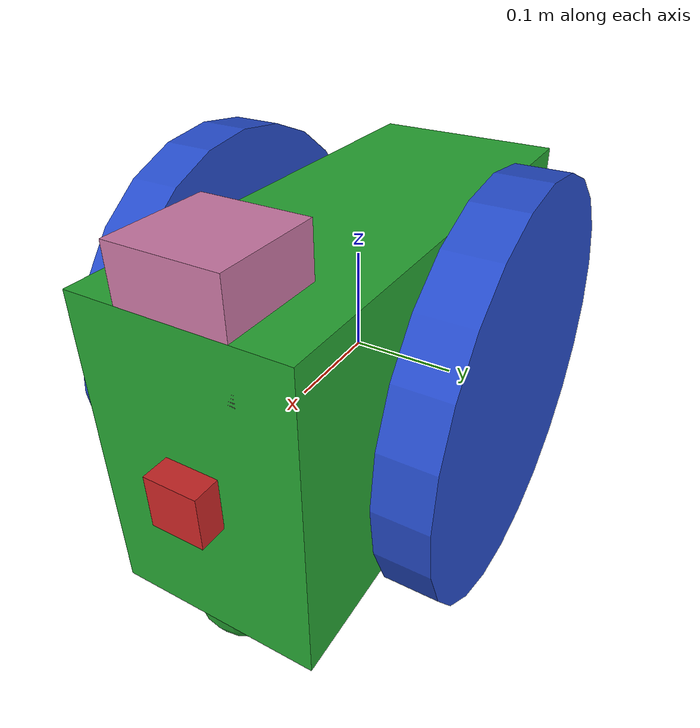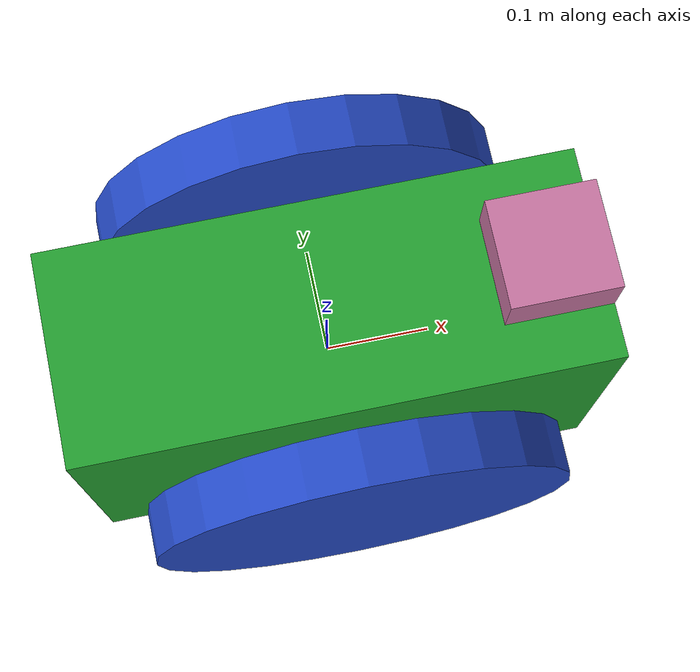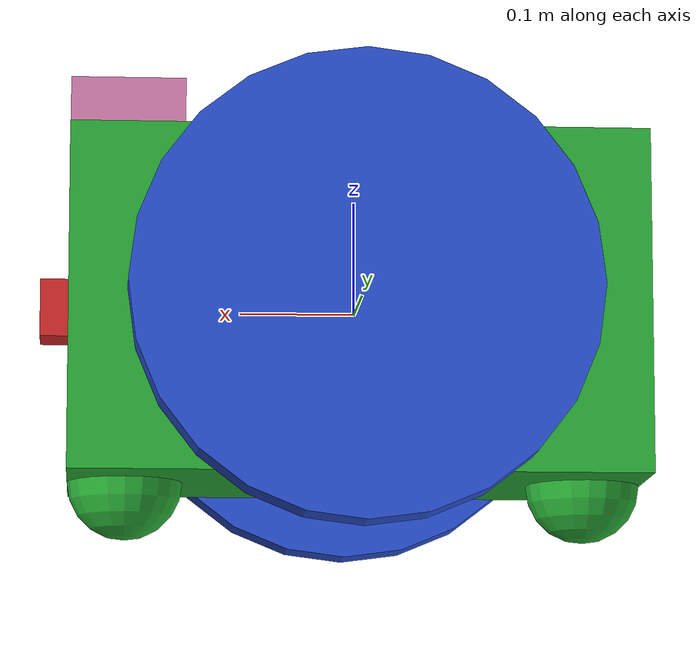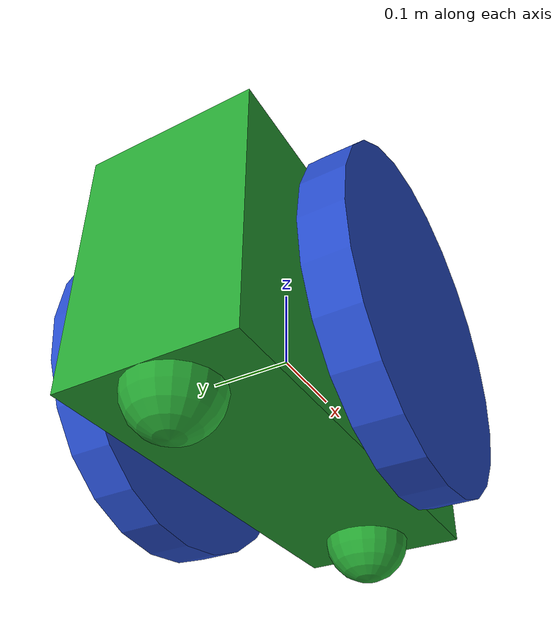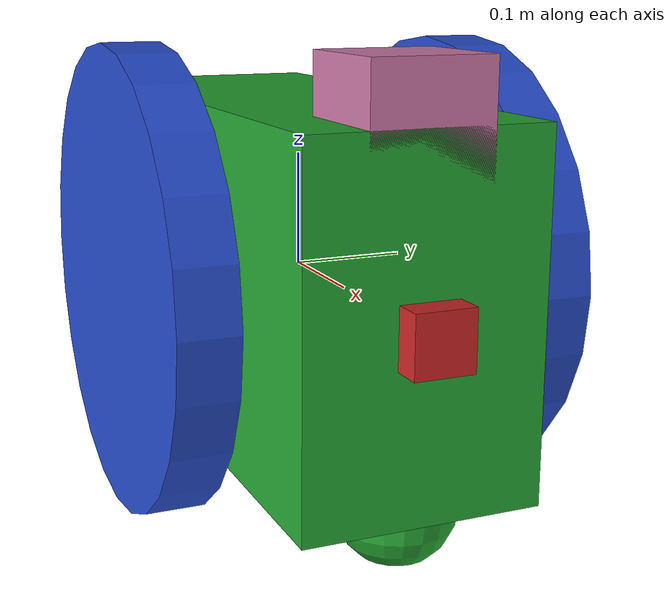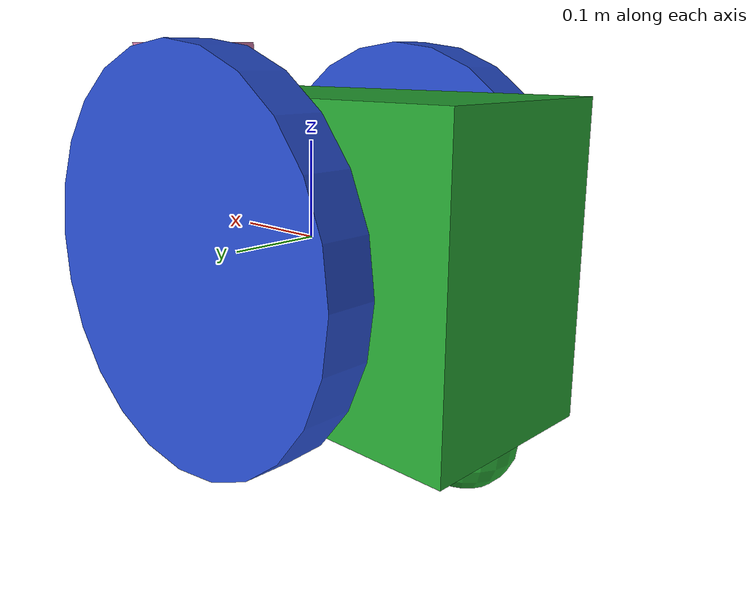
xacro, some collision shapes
<?xml version='1.0'?>

<robot name="my_robot" xmlns:xacro="http://www.ros.org/wiki/xacro">

  <xacro:include filename="$(find my_robot)/urdf/my_robot.gazebo" />

  <link name="robot_footprint"></link>

  <joint name="robot_footprint_joint" type="fixed">
    <origin xyz="0 0 0" rpy="0 0 0" />
    <parent link="robot_footprint"/>
    <child link="chassis" />
  </joint>

  <link name='chassis'>
    <pose>0 0 0.1 0 0 0</pose>

    <inertial>
      <mass value="15.0"/>
      <origin xyz="0.0 0 0" rpy=" 0 0 0"/>
      <inertia
          ixx="0.1" ixy="0" ixz="0"
          iyy="0.1" iyz="0"
          izz="0.1"
      />
    </inertial>

    <collision name='collision'>
      <origin xyz="0 0 0" rpy=" 0 0 0"/>
      <geometry>
        <box size=".5 .2 .3"/>
      </geometry>
    </collision>

    <visual name='chassis_visual'>
      <origin xyz="0 0 0" rpy=" 0 0 0"/>
      <geometry>
        <box size=".5 .2 .3"/>
      </geometry>
    </visual>

    <collision name='back_caster_collision'>
      <origin xyz="-0.2 0 -0.15" rpy=" 0 0 0"/>
      <geometry>
        <sphere radius="0.0499"/>
      </geometry>
    </collision>

    <visual name='back_caster_visual'>
      <origin xyz="-0.2 0 -0.15" rpy=" 0 0 0"/>
      <geometry>
        <sphere radius="0.05"/>
      </geometry>
    </visual>

    <collision name='front_caster_collision'>
      <origin xyz="0.2 0 -0.15" rpy=" 0 0 0"/>
      <geometry>
        <sphere radius="0.0499"/>
      </geometry>
    </collision>

    <visual name='front_caster_visual'>
      <origin xyz="0.2 0 -0.15" rpy=" 0 0 0"/>
      <geometry>
        <sphere radius="0.05"/>
      </geometry>
    </visual>

  </link>

  <link name='left_wheel'>
    <inertial>
      <mass value="5.0"/>
      <origin xyz="0 0 0" rpy="0 1.5707 1.5707"/>
      <inertia
          ixx="0.1" ixy="0" ixz="0"
          iyy="0.1" iyz="0"
          izz="0.1"
      />
    </inertial>

    <collision>
      <origin xyz="0 0 0" rpy="0 1.5707 1.5707"/>
      <geometry>
        <cylinder length="0.05" radius="0.2" />
      </geometry>
    </collision>

    <visual>
      <origin xyz="0 0 0" rpy="0 1.5707 1.5707"/>
      <geometry>
        <cylinder length="0.05" radius="0.2" />
      </geometry>
    </visual>
  </link>

  <link name='right_wheel'>
    <inertial>
      <mass value="5.0"/>
      <origin xyz="0 0 0" rpy="0 1.5707 1.5707"/>
      <inertia
          ixx="0.1" ixy="0" ixz="0"
          iyy="0.1" iyz="0"
          izz="0.1"
      />
    </inertial>

    <collision>
      <origin xyz="0 0 0" rpy="0 1.5707 1.5707"/>
      <geometry>
        <cylinder length="0.05" radius="0.2" />
      </geometry>
    </collision>

    <visual>
      <origin xyz="0 0 0" rpy="0 1.5707 1.5707"/>
      <geometry>
        <cylinder length="0.05" radius="0.2" />
      </geometry>
    </visual>
  </link>

  <joint type="continuous" name="left_wheel_hinge">
    <origin xyz="0 0.15 0" rpy="0 0 0"/>
    <child link="left_wheel"/>
    <parent link="chassis"/>
    <axis xyz="0 1 0" rpy="0 0 0"/>
    <limit effort="10000" velocity="1000"/>
    <dynamics damping="1.0" friction="1.0"/>
  </joint>

  <joint type="continuous" name="right_wheel_hinge">
    <origin xyz="0 -0.15 0" rpy="0 0 0"/>
    <child link="right_wheel"/>
    <parent link="chassis"/>
    <axis xyz="0 1 0" rpy="0 0 0"/>
    <limit effort="10000" velocity="1000"/>
    <dynamics damping="1.0" friction="1.0"/>
  </joint>

  <link name='camera'>
    <inertial>
      <mass value=".1"/>
      <origin xyz=".05 .05 .05" rpy="0 0 0"/>
      <inertia
          ixx="1e-6" ixy="0" ixz="0"
          iyy="1e-6" iyz="0"
          izz="1e-6"
      />
    </inertial>

    <collision>
      <origin xyz="0 0 0" rpy="0 0 0"/>
      <geometry>
        <box size=".05 .05 .05" />
      </geometry>
    </collision>

    <visual>
      <origin xyz="0 0 0" rpy="0 0 0"/>
      <geometry>
        <box size=".05 .05 .05" />
      </geometry>
    </visual>
  </link>

  <joint name="camera_joint" type="fixed">
    <origin xyz=".25 0 0" rpy="0 0 0" />
    <parent link="chassis"/>
    <child link="camera" />
  </joint>

  <joint name="camera_optical_joint" type="fixed">
    <origin xyz="0 0 0" rpy="-1.5707 0 -1.5707"/>
    <parent link="camera"/>
    <child link="camera_link_optical"/>
  </joint>

  <link name="camera_link_optical">
  </link>

  <link name='hokuyo'>
    <inertial>
      <mass value="1e-5"/>
      <origin xyz="0 0 0" rpy="0 0 0"/>
      <inertia
          ixx="1e-6" ixy="0" ixz="0"
          iyy="1e-6" iyz="0"
          izz="1e-6"
      />
    </inertial>

    <collision>
      <origin xyz="0 0 0" rpy="0 0 0"/>
      <geometry>
        <box size=".1 .1 .1" />
      </geometry>
    </collision>

    <visual>
      <origin xyz="0 0 0" rpy="0 0 0"/>
      <geometry>
        <mesh filename="package://my_robot/meshes/hokuyo.dae"/>
      </geometry>
    </visual>
  </link>

  <joint name="hokuyo_joint" type="fixed">
    <origin xyz=".2 0 .15" rpy="0 0 0" />
    <parent link="chassis"/>
    <child link="hokuyo" />
  </joint>

  <gazebo reference="left_wheel"><material>Gazebo/Blue</material></gazebo>
  <gazebo reference="right_wheel"><material>Gazebo/Blue</material></gazebo>
  <gazebo reference="chassis"><material>Gazebo/Green</material></gazebo>
  <gazebo reference="camera"><material>Gazebo/Red</material></gazebo>

</robot>
